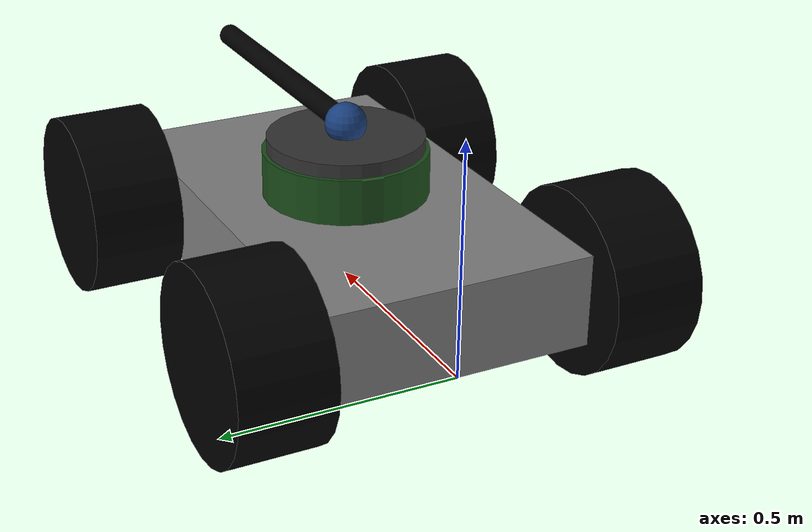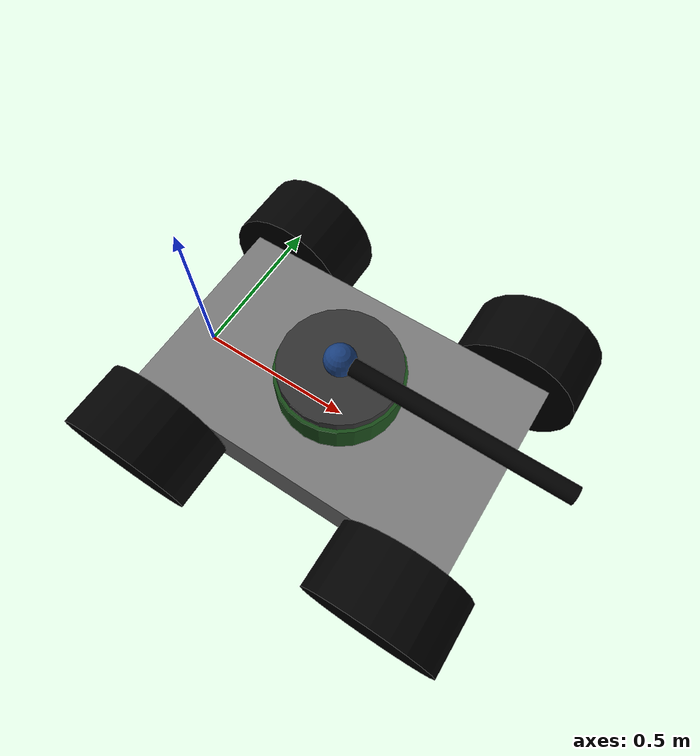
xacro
<?xml version="1.0" ?>
<robot name="myrobot">

<material name="grey">
    <color rgba="0.5 0.5 0.5 1"/>
</material>

<material name="black">
    <color rgba="0 0 0 1"/>
</material>

<material name="dark_green">
    <color rgba="0.1 0.3 0.1 1"/>
</material>

<material name="dark_grey">
    <color rgba="0.2 0.2 0.2 1"/>
</material>

<material name="dark_blue">
    <color rgba="0.1 0.25 0.5 1"/>
</material>

<link name="base_footprint"/>

<!-- Base Link -->

<joint name="base_joint" type="fixed">
    <parent link="base_footprint"/>
    <child link="base_link"/>
    <origin xyz="0.5 0 0" rpy="0 0 0"/>
</joint>

<link name="base_link">
    <visual>
        <origin xyz="0 0 0.1" rpy="0 0 0"/>
        <geometry>
            <box size="1 0.6 0.2"/>
        </geometry>
        <material name="grey"/>
    </visual>
</link>

<!-- Left Back Wheel -->

<joint name="lbwheel_joint" type="continuous">
    <parent link="base_link"/>
    <child link="lbwheel"/>
    <origin xyz="-0.4 0.3 0.1" rpy="-${pi/2} 0 0"/>
    <axis xyz="0 0 -1"/>
</joint>

<link name="lbwheel">
    <visual>
        <origin xyz="0 0 0.1" rpy="0 0 0"/>
        <geometry>
            <cylinder radius="0.2" length="0.2"/>
        </geometry>
        <material name="black"/>
    </visual>
</link>

<!-- Left Front Wheel -->

<joint name="lfwheel_joint" type="continuous">
    <parent link="base_link"/>
    <child link="lfwheel"/>
    <origin xyz="0.4 0.3 0.1" rpy="-${pi/2} 0 0"/>
    <axis xyz="0 0 -1"/>
</joint>

<link name="lfwheel">
    <visual>
        <origin xyz="0 0 0.1" rpy="0 0 0"/>
        <geometry>
            <cylinder radius="0.2" length="0.2"/>
        </geometry>
        <material name="black"/>
    </visual>
</link>

<!-- Right Front Wheel -->

<joint name="rfwheel_joint" type="continuous">
    <parent link="base_link"/>
    <child link="rfwheel"/>
    <origin xyz="0.4 -0.3 0.1" rpy="-${pi/2} 0 0"/>
    <axis xyz="0 0 -1"/>
</joint>

<link name="rfwheel">
    <visual>
        <origin xyz="0 0 -0.1" rpy="0 0 0"/>
        <geometry>
            <cylinder radius="0.2" length="0.2"/>
        </geometry>
        <material name="black"/>
    </visual>
</link>

<!-- Right Back Wheel -->

<joint name="rbwheel_joint" type="continuous">
    <parent link="base_link"/>
    <child link="rbwheel"/>
    <origin xyz="-0.4 -0.3 0.1" rpy="-${pi/2} 0 0"/>
    <axis xyz="0 0 1"/>
</joint>

<link name="rbwheel">
    <visual>
        <origin xyz="0 0 -0.1" rpy="0 0 0"/>
        <geometry>
            <cylinder radius="0.2" length="0.2"/>
        </geometry>
        <material name="black"/>
    </visual>
</link>

<!-- Shooter base -->

<joint name="shooter_joint" type="fixed">
    <parent link="base_link"/>
    <child link="shooter_base"/>
    <origin xyz="0 0 0.2" rpy="0 0 0"/>
</joint>

<link name="shooter_base">
    <visual>
        <origin xyz="0 0 0.05" rpy="0 0 0"/>
        <geometry>
            <cylinder radius="0.18" length="0.1"/>
        </geometry>
        <material name="dark_green"/>
    </visual>
</link>

<!-- Rotator -->

<joint name="rotator_joint" type="revolute">
    <parent link="shooter_base"/>
    <child link="rotator"/>
    <origin xyz="0 0 0.1" rpy="0 0 0"/>
    <axis xyz="0 0 1"/>
    <limit effort="100" velocity="1.0" lower="-${pi}" upper="${pi}"/>
</joint>

<link name="rotator">
    <visual>
        <origin xyz="0 0 0.015" rpy="0 0 0"/>
        <geometry>
            <cylinder radius="0.17" length="0.03"/>
        </geometry>
        <material name="dark_grey"/>
    </visual>
</link>

<!-- Barrel -->

<joint name="barrel_joint" type="revolute">
    <parent link="rotator"/>
    <child link="barrel"/>
    <origin xyz="0 0 0.055" rpy="0 0 0"/>
    <axis xyz="0 -1 0"/>
    <limit effort="100" velocity="1.0" lower="0" upper="${pi}"/>
</joint>

<link name="barrel">
    <visual>
        <origin xyz="0 0 0.0" rpy="0 0 0"/>
        <geometry>
          <mesh filename="package://rostut/models/shooter/meshes/barrel.stl" scale="1 1 1"/>
        </geometry>
        <collision>
            <origin xyz="0 0 0.0" rpy="0 0 0"/>
            <geometry>
                <mesh filename="package://rostut/models/shooter/meshes/barrel.stl" scale="1 1 1"/>
            </geometry>
        </collision>
        <material name="black"/>
    </visual>
</link>

<!-- Stopper -->

<joint name="stopper_joint" type="prismatic">
    <parent link="barrel"/>
    <child link="stopper"/>
    <origin xyz="0 0 0" rpy="0 0 0"/>
    <axis xyz="1 0 0"/>
    <limit effort="100" velocity="1.0" lower="0" upper="0.55"/>
</joint>

<link name="stopper">
    <visual>
        <origin xyz="0.05 0 0" rpy="0 ${pi/2} 0"/>
        <geometry>
            <cylinder radius="0.0165" length="0.1"/>
        </geometry>
        <material name="grey"/>
    </visual>
</link>

<!-- Connector -->

<joint name="connector_joint" type="fixed">
    <parent link="rotator"/>
    <child link="connector"/>
    <origin xyz="0 0 0.055" rpy="0 0 0"/>
</joint>

<link name="connector">
    <visual>
        <origin xyz="0 0 0" rpy="0 0 0"/>
        <geometry>
            <sphere radius="0.045"/>
        </geometry>
        <material name="dark_blue"/>
    </visual>
</link>

</robot>
